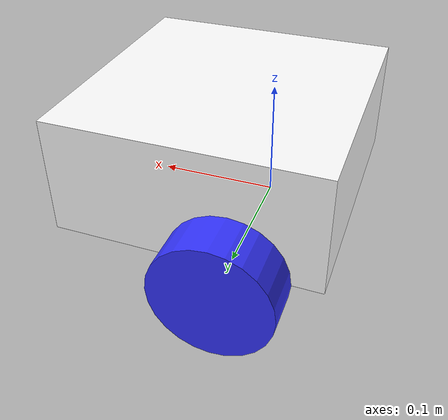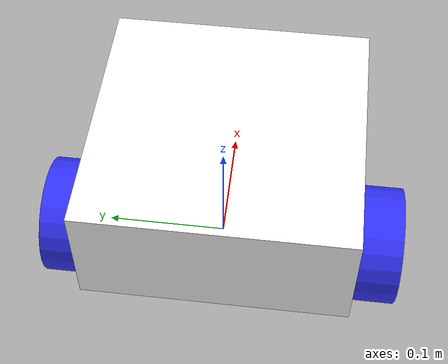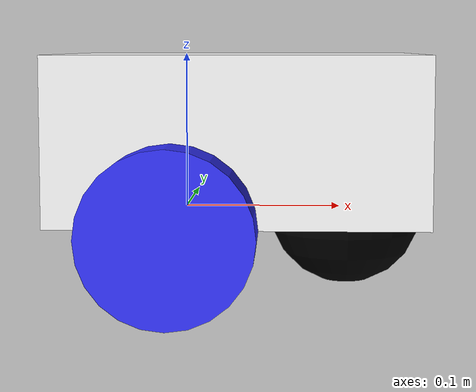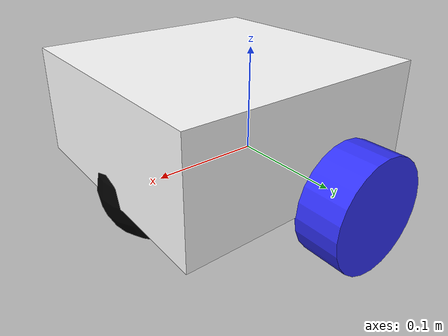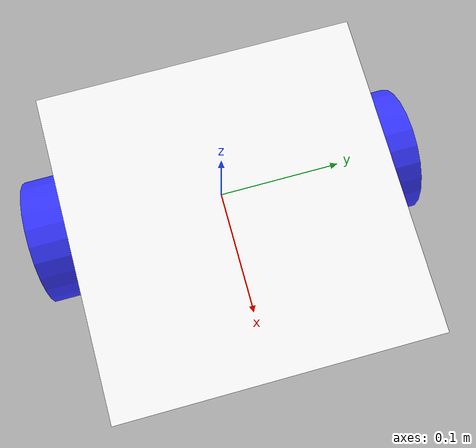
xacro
<?xml version="1.0"?>
<robot xmlns:xacro="http://www.ros.org/wiki/xacro"  name="robot">

    <xacro:arg name="use_ros2_control" default="true"/>
    <xacro:arg name="sim_mode" default="false"/>

    <xacro:include filename="robot_core.xacro" />

    <xacro:if value="$(arg use_ros2_control)">
        <xacro:include filename="ros2_control.xacro" />
    </xacro:if>
    <xacro:unless value="$(arg use_ros2_control)">
        <xacro:include filename="gazebo_control.xacro" />
    </xacro:unless>

</robot>

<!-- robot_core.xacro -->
<robot xmlns:xacro="http://www.ros.org/wiki/xacro" >

    <xacro:include filename="inertial_macros.xacro"/>

    <material name="white">
        <color rgba="1 1 1 1" />
    </material>

    <material name="orange">
        <color rgba="1 0.3 0.1 1"/>
    </material>

    <material name="blue">
        <color rgba="0.2 0.2 1 1"/>
    </material>

    <material name="black">
        <color rgba="0 0 0 1"/>
    </material>

    <!-- BASE LINK -->

    <link name="base_link">

    </link>

    <!-- CHASSIS LINK -->

    <joint name="chassis_joint" type="fixed">
        <parent link="base_link"/>
        <child link="chassis"/>
        <origin xyz="-0.075 0 0"/>
    </joint>

    <link name="chassis">
        <visual>
            <origin xyz="0.112 0 0.05"/>
            <geometry>
                <box size="0.224 0.224 0.1"/>
            </geometry>
            <material name="white"/>
        </visual>
        <collision>
            <origin xyz="0.112 0 0.05"/>
            <geometry>
                <box size="0.224 0.224 0.1"/>
            </geometry>
        </collision>
        <xacro:inertial_box mass="0.5" x="0.224" y="0.224" z="0.1">
            <origin xyz="0.112 0 0.05" rpy="0 0 0"/>
        </xacro:inertial_box>
    </link>
    <gazebo reference="chassis">
        <material>Gazebo/White</material>
    </gazebo>

    <!-- LEFT WHEEL LINK -->

    <joint name="left_wheel_joint" type="continuous">
        <parent link="base_link"/>
        <child link="left_wheel"/>
        <origin xyz="0 0.131 0" rpy="-${pi/2} 0 0" />
        <axis xyz="0 0 1"/>
    </joint>

    <link name="left_wheel">
        <visual>
            <geometry>
                <cylinder radius="0.05" length="0.04"/>
            </geometry>
            <material name="blue"/>
        </visual>
        <collision>
            <geometry>
                <cylinder radius="0.05" length="0.04"/>
            </geometry>
        </collision>
        <xacro:inertial_cylinder mass="0.1" length="0.04" radius="0.05">
            <origin xyz="0 0 0" rpy="0 0 0"/>
        </xacro:inertial_cylinder>
    </link>
    <gazebo reference="left_wheel">
        <material>Gazebo/Blue</material>
    </gazebo>

    <!-- RIGHT WHEEL LINK -->

    <joint name="right_wheel_joint" type="continuous">
        <parent link="base_link"/>
        <child link="right_wheel"/>
        <origin xyz="0 -0.131 0" rpy="${pi/2} 0 0" />
        <axis xyz="0 0 -1"/>
    </joint>

    <link name="right_wheel">
        <visual>
            <geometry>
                <cylinder radius="0.05" length="0.04"/>
            </geometry>
            <material name="blue"/>
        </visual>
        <collision>
            <geometry>
                <cylinder radius="0.05" length="0.04"/>
            </geometry>
        </collision>
        <xacro:inertial_cylinder mass="0.1" length="0.04" radius="0.05">
            <origin xyz="0 0 0" rpy="0 0 0"/>
        </xacro:inertial_cylinder>
    </link>
    <gazebo reference="right_wheel">
        <material>Gazebo/Blue</material>
    </gazebo>

    <!-- CASTER WHEEL LINK -->

    <joint name="caster_wheel_joint" type="fixed">
        <parent link="chassis"/>
        <child link="caster_wheel"/>
        <origin xyz="0.1792 0 0"/>
    </joint>

    <link name="caster_wheel">
        <visual>
            <geometry>
                <sphere radius="0.05"/>
            </geometry>
            <material name="black"/>
        </visual>
        <collision>
            <geometry>
                <sphere radius="0.05"/>
            </geometry>
        </collision>
        <xacro:inertial_sphere mass="0.1" radius="0.05">
            <origin xyz="0 0 0" rpy="0 0 0"/>
        </xacro:inertial_sphere>
    </link>
    <gazebo reference="caster_wheel">
        <material>Gazebo/Black</material>
        <mu1 value="0.001"/>
        <mu2 value="0.001"/>
    </gazebo>

</robot>
